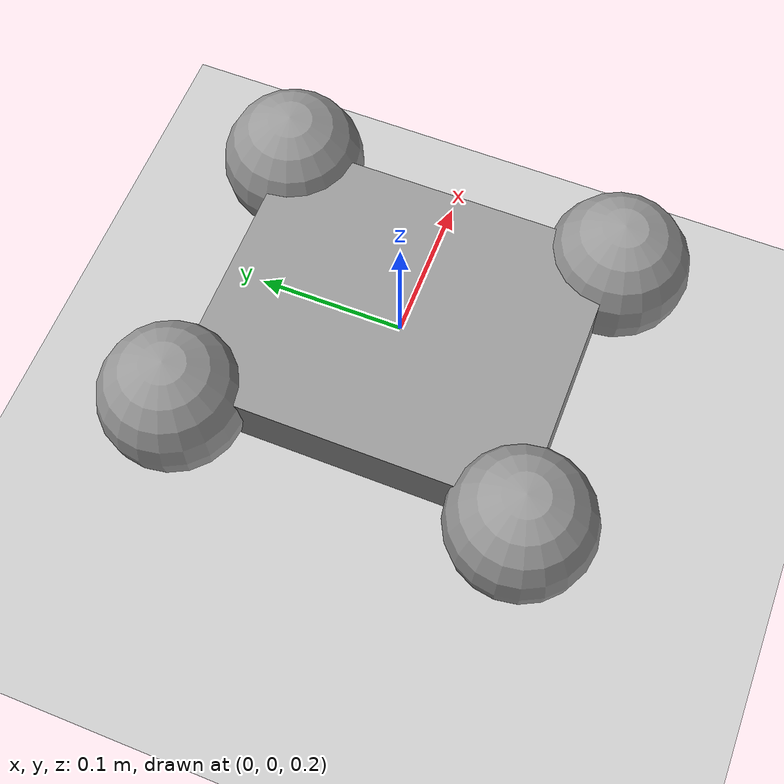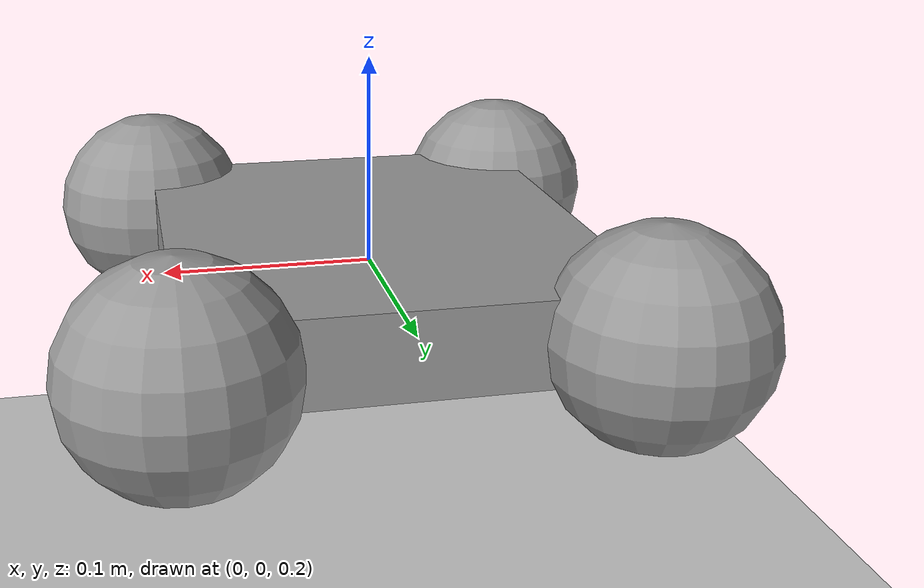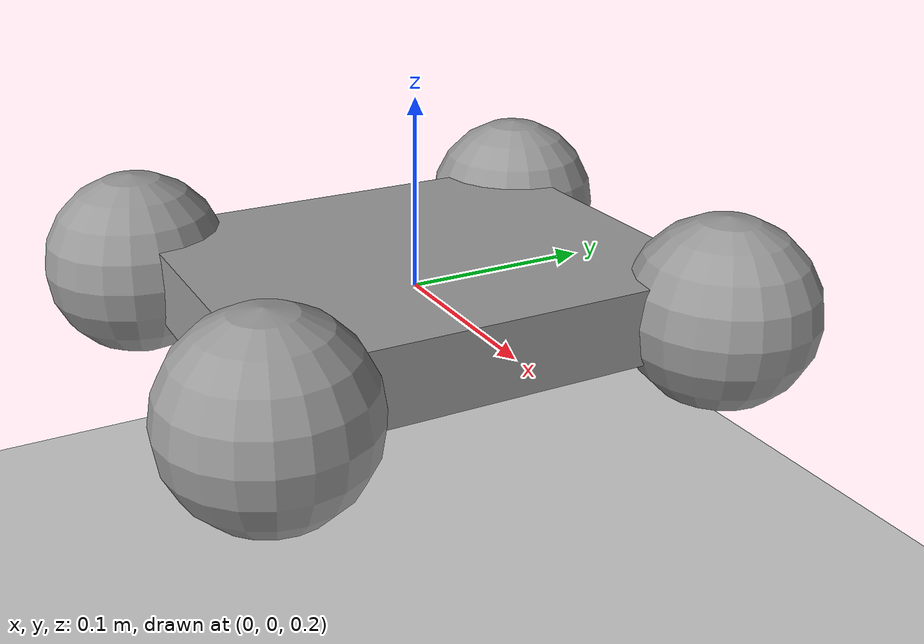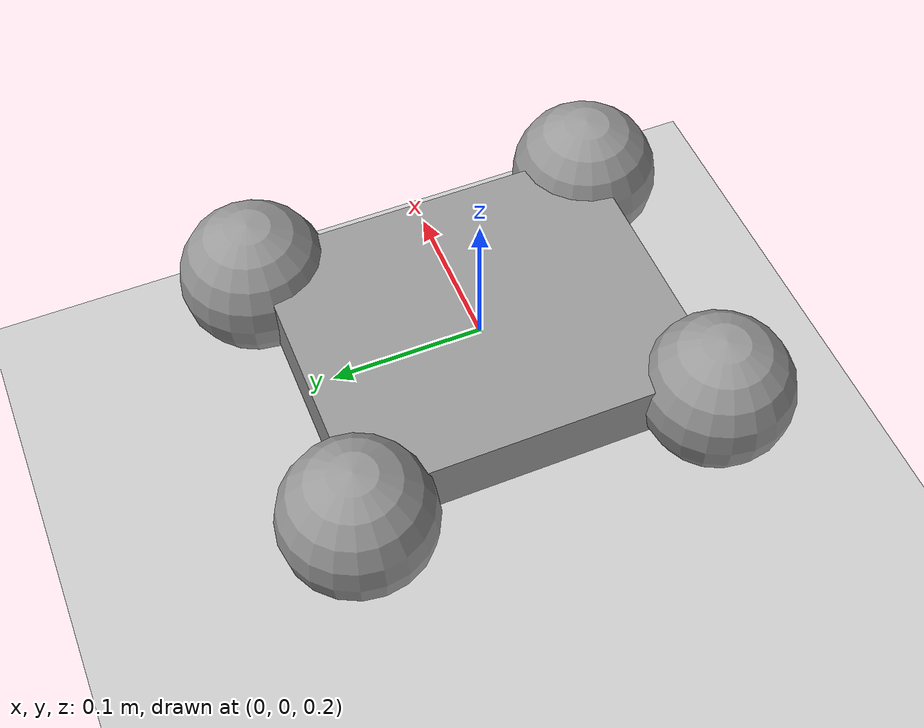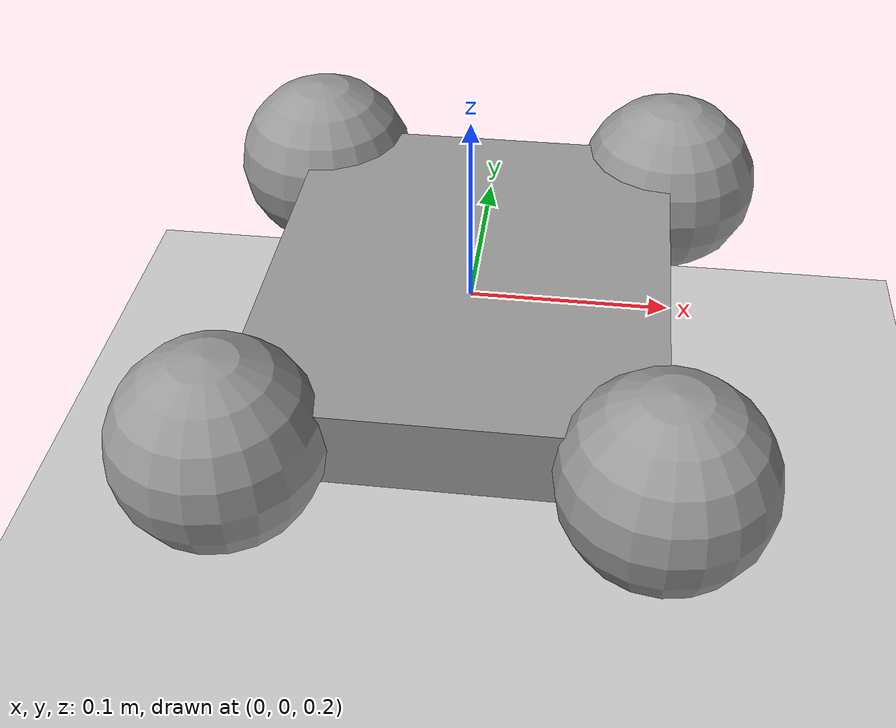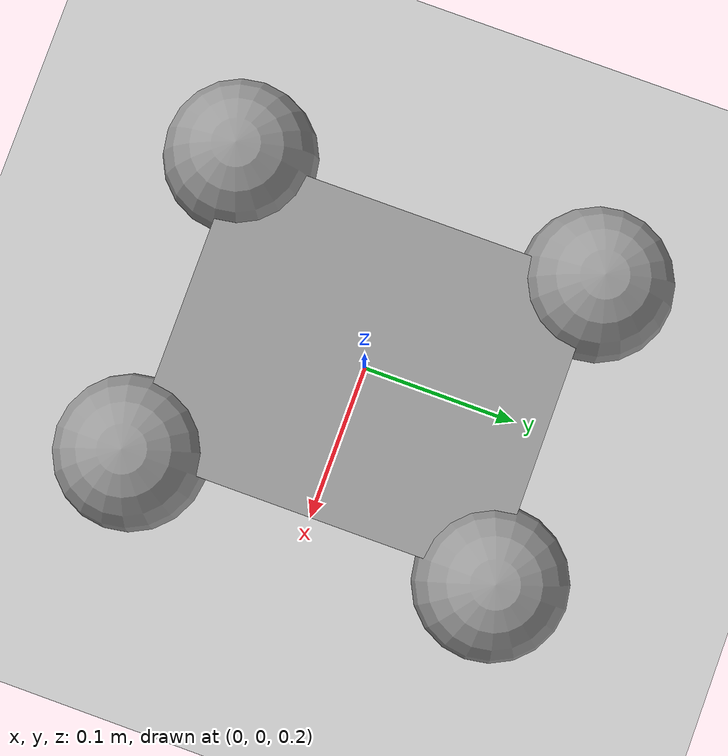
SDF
<sdf version='1.6'>
  <world name='default'>

    <include>
      <uri>model://ground_plane</uri>
    </include>

    <include>
      <uri>model://sun</uri>
    </include>

    <include>
      <uri>model://ugv-rb</uri>
      <pose>0 0 0.2 0 0 0</pose>
    </include>

    <gravity>0 0 -9.8</gravity>

    <physics name='default_physics' default='0' type='ode'>
      <max_step_size>0.001</max_step_size>
      <real_time_factor>1</real_time_factor>
      <real_time_update_rate>1000</real_time_update_rate>
    </physics>

    <gui fullscreen='0'>
      <camera name='user_camera'>
        <pose frame=''>5 -5 2 0 0.275643 2.35619</pose>
        <view_controller>orbit</view_controller>
        <projection_type>perspective</projection_type>
      </camera>
    </gui>

  </world>
</sdf>

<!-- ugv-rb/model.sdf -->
<sdf version='1.6'>
  <model name='ugv-rb'>

    <plugin name="controller" filename="libcontroller_plugin.so"/>

    <link name='chassis'>

      <sensor name='stereo_camera' type='multicamera'>

        <always_on>1</always_on>
        <update_rate>10</update_rate>

        <camera name="left">
          <save enabled="false">
            <path>/tmp/stereo_camera_left</path>
          </save>
          <horizontal_fov>1.047</horizontal_fov>
          <pose>0 0.05 0 0 0 0</pose>
          <image>
            <width>400</width>
            <height>400</height>
          </image>
          <clip>
            <near>0.1</near>
            <far>100</far>
          </clip>
        </camera>

        <camera name="right">
          <save enabled="false">
            <path>/tmp/stereo_camera_right</path>
          </save>
          <horizontal_fov>1.047</horizontal_fov>
          <pose>0 -0.05 0 0 0 0</pose>
          <image>
            <width>400</width>
            <height>400</height>
          </image>
          <clip>
            <near>0.1</near>
            <far>100</far>
          </clip>
        </camera>

      </sensor>

      <inertial>
        <mass>0.71616</mass>
        <inertia>
          <ixx>0.00353306</ixx>
          <ixy>0</ixy>
          <ixz>0</ixz>
          <iyy>0.00248269</iyy>
          <iyz>0</iyz>
          <izz>0.00582477</izz>
        </inertia>
        <pose frame=''>0 0 0 0 -0 0</pose>
      </inertial>
      <pose frame=''>0 0 0 0 -0 0</pose>
      <gravity>1</gravity>
      <self_collide>0</self_collide>
      <kinematic>0</kinematic>
      <enable_wind>0</enable_wind>
      <visual name='visual'>
        <pose frame=''>0 0 0 0 -0 0</pose>
        <geometry>
          <box>
            <size>0.2 0.24 0.04</size>
          </box>
        </geometry>
        <material>
          <lighting>1</lighting>
          <script>
            <uri>file://media/materials/scripts/gazebo.material</uri>
            <name>Gazebo/Grey</name>
          </script>
          <shader type='pixel'>
            <normal_map>__default__</normal_map>
          </shader>
          <ambient>0.3 0.3 0.3 1</ambient>
          <diffuse>0.7 0.7 0.7 1</diffuse>
          <specular>0.01 0.01 0.01 1</specular>
          <emissive>0 0 0 1</emissive>
        </material>
        <transparency>0</transparency>
        <cast_shadows>1</cast_shadows>
      </visual>
      <collision name='collision'>
        <laser_retro>0</laser_retro>
        <max_contacts>10</max_contacts>
        <pose frame=''>0 0 0 0 -0 0</pose>
        <geometry>
          <box>
            <size>0.2 0.24 0.04</size>
          </box>
        </geometry>
        <surface>
          <friction>
            <ode>
              <mu>1</mu>
              <mu2>1</mu2>
              <fdir1>0 0 0</fdir1>
              <slip1>0</slip1>
              <slip2>0</slip2>
            </ode>
            <torsional>
              <coefficient>1</coefficient>
              <patch_radius>0</patch_radius>
              <surface_radius>0</surface_radius>
              <use_patch_radius>1</use_patch_radius>
              <ode>
                <slip>0</slip>
              </ode>
            </torsional>
          </friction>
          <bounce>
            <restitution_coefficient>0</restitution_coefficient>
            <threshold>1e+06</threshold>
          </bounce>
          <contact>
            <collide_without_contact>0</collide_without_contact>
            <collide_without_contact_bitmask>1</collide_without_contact_bitmask>
            <collide_bitmask>1</collide_bitmask>
            <ode>
              <soft_cfm>0</soft_cfm>
              <soft_erp>0.2</soft_erp>
              <kp>1e+13</kp>
              <kd>1</kd>
              <max_vel>0.01</max_vel>
              <min_depth>0</min_depth>
            </ode>
            <bullet>
              <split_impulse>1</split_impulse>
              <split_impulse_penetration_threshold>-0.01</split_impulse_penetration_threshold>
              <soft_cfm>0</soft_cfm>
              <soft_erp>0.2</soft_erp>
              <kp>1e+13</kp>
              <kd>1</kd>
            </bullet>
          </contact>
        </surface>
      </collision>
    </link>
    <link name='front_left_wheel'>
      <inertial>
        <mass>0.195302</mass>
        <inertia>
          <ixx>0.0001953</ixx>
          <ixy>0</ixy>
          <ixz>0</ixz>
          <iyy>0.0001953</iyy>
          <iyz>0</iyz>
          <izz>0.0001953</izz>
        </inertia>
        <pose frame=''>0 0 0 0 -0 0</pose>
      </inertial>
      <pose frame=''>0.1 0.12 0 0 -0 0</pose>
      <gravity>1</gravity>
      <self_collide>0</self_collide>
      <kinematic>0</kinematic>
      <enable_wind>0</enable_wind>
      <visual name='visual'>
        <pose frame=''>0 0 0 0 -0 0</pose>
        <geometry>
          <sphere>
            <radius>0.05</radius>
          </sphere>
        </geometry>
        <material>
          <lighting>1</lighting>
          <script>
            <uri>file://media/materials/scripts/gazebo.material</uri>
            <name>Gazebo/Grey</name>
          </script>
          <shader type='pixel'>
            <normal_map>__default__</normal_map>
          </shader>
          <ambient>0.3 0.3 0.3 1</ambient>
          <diffuse>0.7 0.7 0.7 1</diffuse>
          <specular>0.01 0.01 0.01 1</specular>
          <emissive>0 0 0 1</emissive>
        </material>
        <transparency>0</transparency>
        <cast_shadows>1</cast_shadows>
      </visual>
      <collision name='collision'>
        <laser_retro>0</laser_retro>
        <max_contacts>10</max_contacts>
        <pose frame=''>0 0 0 0 -0 0</pose>
        <geometry>
          <sphere>
            <radius>0.05</radius>
          </sphere>
        </geometry>
        <surface>
          <friction>
            <ode>
              <mu>1</mu>
              <mu2>1</mu2>
              <fdir1>0 0 0</fdir1>
              <slip1>0</slip1>
              <slip2>0</slip2>
            </ode>
            <torsional>
              <coefficient>1</coefficient>
              <patch_radius>0</patch_radius>
              <surface_radius>0</surface_radius>
              <use_patch_radius>1</use_patch_radius>
              <ode>
                <slip>0</slip>
              </ode>
            </torsional>
          </friction>
          <bounce>
            <restitution_coefficient>0</restitution_coefficient>
            <threshold>1e+06</threshold>
          </bounce>
          <contact>
            <collide_without_contact>0</collide_without_contact>
            <collide_without_contact_bitmask>1</collide_without_contact_bitmask>
            <collide_bitmask>1</collide_bitmask>
            <ode>
              <soft_cfm>0</soft_cfm>
              <soft_erp>0.2</soft_erp>
              <kp>1e+13</kp>
              <kd>1</kd>
              <max_vel>0.01</max_vel>
              <min_depth>0</min_depth>
            </ode>
            <bullet>
              <split_impulse>1</split_impulse>
              <split_impulse_penetration_threshold>-0.01</split_impulse_penetration_threshold>
              <soft_cfm>0</soft_cfm>
              <soft_erp>0.2</soft_erp>
              <kp>1e+13</kp>
              <kd>1</kd>
            </bullet>
          </contact>
        </surface>
      </collision>
    </link>
    <link name='front_right_wheel'>
      <inertial>
        <mass>0.195302</mass>
        <inertia>
          <ixx>0.0001953</ixx>
          <ixy>0</ixy>
          <ixz>0</ixz>
          <iyy>0.0001953</iyy>
          <iyz>0</iyz>
          <izz>0.0001953</izz>
        </inertia>
        <pose frame=''>0 0 0 0 -0 0</pose>
      </inertial>
      <pose frame=''>0.1 -0.12 0 0 -0 0</pose>
      <gravity>1</gravity>
      <self_collide>0</self_collide>
      <kinematic>0</kinematic>
      <enable_wind>0</enable_wind>
      <visual name='visual'>
        <pose frame=''>0 0 0 0 -0 0</pose>
        <geometry>
          <sphere>
            <radius>0.05</radius>
          </sphere>
        </geometry>
        <material>
          <lighting>1</lighting>
          <script>
            <uri>file://media/materials/scripts/gazebo.material</uri>
            <name>Gazebo/Grey</name>
          </script>
          <shader type='pixel'>
            <normal_map>__default__</normal_map>
          </shader>
          <ambient>0.3 0.3 0.3 1</ambient>
          <diffuse>0.7 0.7 0.7 1</diffuse>
          <specular>0.01 0.01 0.01 1</specular>
          <emissive>0 0 0 1</emissive>
        </material>
        <transparency>0</transparency>
        <cast_shadows>1</cast_shadows>
      </visual>
      <collision name='collision'>
        <laser_retro>0</laser_retro>
        <max_contacts>10</max_contacts>
        <pose frame=''>0 0 0 0 -0 0</pose>
        <geometry>
          <sphere>
            <radius>0.05</radius>
          </sphere>
        </geometry>
        <surface>
          <friction>
            <ode>
              <mu>1</mu>
              <mu2>1</mu2>
              <fdir1>0 0 0</fdir1>
              <slip1>0</slip1>
              <slip2>0</slip2>
            </ode>
            <torsional>
              <coefficient>1</coefficient>
              <patch_radius>0</patch_radius>
              <surface_radius>0</surface_radius>
              <use_patch_radius>1</use_patch_radius>
              <ode>
                <slip>0</slip>
              </ode>
            </torsional>
          </friction>
          <bounce>
            <restitution_coefficient>0</restitution_coefficient>
            <threshold>1e+06</threshold>
          </bounce>
          <contact>
            <collide_without_contact>0</collide_without_contact>
            <collide_without_contact_bitmask>1</collide_without_contact_bitmask>
            <collide_bitmask>1</collide_bitmask>
            <ode>
              <soft_cfm>0</soft_cfm>
              <soft_erp>0.2</soft_erp>
              <kp>1e+13</kp>
              <kd>1</kd>
              <max_vel>0.01</max_vel>
              <min_depth>0</min_depth>
            </ode>
            <bullet>
              <split_impulse>1</split_impulse>
              <split_impulse_penetration_threshold>-0.01</split_impulse_penetration_threshold>
              <soft_cfm>0</soft_cfm>
              <soft_erp>0.2</soft_erp>
              <kp>1e+13</kp>
              <kd>1</kd>
            </bullet>
          </contact>
        </surface>
      </collision>
    </link>
    <link name='back_left_wheel'>
      <inertial>
        <mass>0.195302</mass>
        <inertia>
          <ixx>0.0001953</ixx>
          <ixy>0</ixy>
          <ixz>0</ixz>
          <iyy>0.0001953</iyy>
          <iyz>0</iyz>
          <izz>0.0001953</izz>
        </inertia>
        <pose frame=''>0 0 0 0 -0 0</pose>
      </inertial>
      <pose frame=''>-0.1 0.12 0 0 -0 0</pose>
      <gravity>1</gravity>
      <self_collide>0</self_collide>
      <kinematic>0</kinematic>
      <enable_wind>0</enable_wind>
      <visual name='visual'>
        <pose frame=''>0 0 0 0 -0 0</pose>
        <geometry>
          <sphere>
            <radius>0.05</radius>
          </sphere>
        </geometry>
        <material>
          <lighting>1</lighting>
          <script>
            <uri>file://media/materials/scripts/gazebo.material</uri>
            <name>Gazebo/Grey</name>
          </script>
          <shader type='pixel'>
            <normal_map>__default__</normal_map>
          </shader>
          <ambient>0.3 0.3 0.3 1</ambient>
          <diffuse>0.7 0.7 0.7 1</diffuse>
          <specular>0.01 0.01 0.01 1</specular>
          <emissive>0 0 0 1</emissive>
        </material>
        <transparency>0</transparency>
        <cast_shadows>1</cast_shadows>
      </visual>
      <collision name='collision'>
        <laser_retro>0</laser_retro>
        <max_contacts>10</max_contacts>
        <pose frame=''>0 0 0 0 -0 0</pose>
        <geometry>
          <sphere>
            <radius>0.05</radius>
          </sphere>
        </geometry>
        <surface>
          <friction>
            <ode>
              <mu>1</mu>
              <mu2>1</mu2>
              <fdir1>0 0 0</fdir1>
              <slip1>0</slip1>
              <slip2>0</slip2>
            </ode>
            <torsional>
              <coefficient>1</coefficient>
              <patch_radius>0</patch_radius>
              <surface_radius>0</surface_radius>
              <use_patch_radius>1</use_patch_radius>
              <ode>
                <slip>0</slip>
              </ode>
            </torsional>
          </friction>
          <bounce>
            <restitution_coefficient>0</restitution_coefficient>
            <threshold>1e+06</threshold>
          </bounce>
          <contact>
            <collide_without_contact>0</collide_without_contact>
            <collide_without_contact_bitmask>1</collide_without_contact_bitmask>
            <collide_bitmask>1</collide_bitmask>
            <ode>
              <soft_cfm>0</soft_cfm>
              <soft_erp>0.2</soft_erp>
              <kp>1e+13</kp>
              <kd>1</kd>
              <max_vel>0.01</max_vel>
              <min_depth>0</min_depth>
            </ode>
            <bullet>
              <split_impulse>1</split_impulse>
              <split_impulse_penetration_threshold>-0.01</split_impulse_penetration_threshold>
              <soft_cfm>0</soft_cfm>
              <soft_erp>0.2</soft_erp>
              <kp>1e+13</kp>
              <kd>1</kd>
            </bullet>
          </contact>
        </surface>
      </collision>
    </link>
    <link name='back_right_wheel'>
      <inertial>
        <mass>0.195302</mass>
        <inertia>
          <ixx>0.0001953</ixx>
          <ixy>0</ixy>
          <ixz>0</ixz>
          <iyy>0.0001953</iyy>
          <iyz>0</iyz>
          <izz>0.0001953</izz>
        </inertia>
        <pose frame=''>0 0 0 0 -0 0</pose>
      </inertial>
      <pose frame=''>-0.1 -0.12 0 0 -0 0</pose>
      <gravity>1</gravity>
      <self_collide>0</self_collide>
      <kinematic>0</kinematic>
      <enable_wind>0</enable_wind>
      <visual name='visual'>
        <pose frame=''>0 0 0 0 -0 0</pose>
        <geometry>
          <sphere>
            <radius>0.05</radius>
          </sphere>
        </geometry>
        <material>
          <lighting>1</lighting>
          <script>
            <uri>file://media/materials/scripts/gazebo.material</uri>
            <name>Gazebo/Grey</name>
          </script>
          <shader type='pixel'>
            <normal_map>__default__</normal_map>
          </shader>
          <ambient>0.3 0.3 0.3 1</ambient>
          <diffuse>0.7 0.7 0.7 1</diffuse>
          <specular>0.01 0.01 0.01 1</specular>
          <emissive>0 0 0 1</emissive>
        </material>
        <transparency>0</transparency>
        <cast_shadows>1</cast_shadows>
      </visual>
      <collision name='collision'>
        <laser_retro>0</laser_retro>
        <max_contacts>10</max_contacts>
        <pose frame=''>0 0 0 0 -0 0</pose>
        <geometry>
          <sphere>
            <radius>0.05</radius>
          </sphere>
        </geometry>
        <surface>
          <friction>
            <ode>
              <mu>1</mu>
              <mu2>1</mu2>
              <fdir1>0 0 0</fdir1>
              <slip1>0</slip1>
              <slip2>0</slip2>
            </ode>
            <torsional>
              <coefficient>1</coefficient>
              <patch_radius>0</patch_radius>
              <surface_radius>0</surface_radius>
              <use_patch_radius>1</use_patch_radius>
              <ode>
                <slip>0</slip>
              </ode>
            </torsional>
          </friction>
          <bounce>
            <restitution_coefficient>0</restitution_coefficient>
            <threshold>1e+06</threshold>
          </bounce>
          <contact>
            <collide_without_contact>0</collide_without_contact>
            <collide_without_contact_bitmask>1</collide_without_contact_bitmask>
            <collide_bitmask>1</collide_bitmask>
            <ode>
              <soft_cfm>0</soft_cfm>
              <soft_erp>0.2</soft_erp>
              <kp>1e+13</kp>
              <kd>1</kd>
              <max_vel>0.01</max_vel>
              <min_depth>0</min_depth>
            </ode>
            <bullet>
              <split_impulse>1</split_impulse>
              <split_impulse_penetration_threshold>-0.01</split_impulse_penetration_threshold>
              <soft_cfm>0</soft_cfm>
              <soft_erp>0.2</soft_erp>
              <kp>1e+13</kp>
              <kd>1</kd>
            </bullet>
          </contact>
        </surface>
      </collision>
    </link>
    <joint name='front_right_wheel_joint' type='revolute'>
      <parent>chassis</parent>
      <child>front_right_wheel</child>
      <pose frame=''>0 0 0 0 -0 0</pose>
      <axis>
        <xyz>0 1 0</xyz>
        <use_parent_model_frame>0</use_parent_model_frame>
        <limit>
          <lower>-1.79769e+308</lower>
          <upper>1.79769e+308</upper>
          <effort>-1</effort>
          <velocity>-1</velocity>
        </limit>
        <dynamics>
          <spring_reference>0</spring_reference>
          <spring_stiffness>0</spring_stiffness>
          <damping>0</damping>
          <friction>0</friction>
        </dynamics>
      </axis>
      <physics>
        <ode>
          <limit>
            <cfm>0</cfm>
            <erp>0.2</erp>
          </limit>
          <suspension>
            <cfm>0</cfm>
            <erp>0.2</erp>
          </suspension>
        </ode>
      </physics>
    </joint>
    <joint name='back_left_wheel_joint' type='revolute'>
      <parent>chassis</parent>
      <child>back_left_wheel</child>
      <pose frame=''>0 0 0 0 -0 0</pose>
      <axis>
        <xyz>0 1 0</xyz>
        <use_parent_model_frame>0</use_parent_model_frame>
        <limit>
          <lower>-1.79769e+308</lower>
          <upper>1.79769e+308</upper>
          <effort>-1</effort>
          <velocity>-1</velocity>
        </limit>
        <dynamics>
          <spring_reference>0</spring_reference>
          <spring_stiffness>0</spring_stiffness>
          <damping>0</damping>
          <friction>0</friction>
        </dynamics>
      </axis>
      <physics>
        <ode>
          <limit>
            <cfm>0</cfm>
            <erp>0.2</erp>
          </limit>
          <suspension>
            <cfm>0</cfm>
            <erp>0.2</erp>
          </suspension>
        </ode>
      </physics>
    </joint>
    <joint name='back_right_wheel_joint' type='revolute'>
      <parent>chassis</parent>
      <child>back_right_wheel</child>
      <pose frame=''>0 0 0 0 -0 0</pose>
      <axis>
        <xyz>0 1 0</xyz>
        <use_parent_model_frame>0</use_parent_model_frame>
        <limit>
          <lower>-1.79769e+308</lower>
          <upper>1.79769e+308</upper>
          <effort>-1</effort>
          <velocity>-1</velocity>
        </limit>
        <dynamics>
          <spring_reference>0</spring_reference>
          <spring_stiffness>0</spring_stiffness>
          <damping>0</damping>
          <friction>0</friction>
        </dynamics>
      </axis>
      <physics>
        <ode>
          <limit>
            <cfm>0</cfm>
            <erp>0.2</erp>
          </limit>
          <suspension>
            <cfm>0</cfm>
            <erp>0.2</erp>
          </suspension>
        </ode>
      </physics>
    </joint>
    <joint name='front_left_wheel_joint' type='revolute'>
      <parent>chassis</parent>
      <child>front_left_wheel</child>
      <pose frame=''>0 0 0 0 -0 0</pose>
      <axis>
        <xyz>0 1 0</xyz>
        <use_parent_model_frame>0</use_parent_model_frame>
        <limit>
          <lower>-1.79769e+308</lower>
          <upper>1.79769e+308</upper>
          <effort>-1</effort>
          <velocity>-1</velocity>
        </limit>
        <dynamics>
          <spring_reference>0</spring_reference>
          <spring_stiffness>0</spring_stiffness>
          <damping>0</damping>
          <friction>0</friction>
        </dynamics>
      </axis>
      <physics>
        <ode>
          <limit>
            <cfm>0</cfm>
            <erp>0.2</erp>
          </limit>
          <suspension>
            <cfm>0</cfm>
            <erp>0.2</erp>
          </suspension>
        </ode>
      </physics>
    </joint>
    <static>0</static>
    <allow_auto_disable>1</allow_auto_disable>
  </model>
</sdf>
